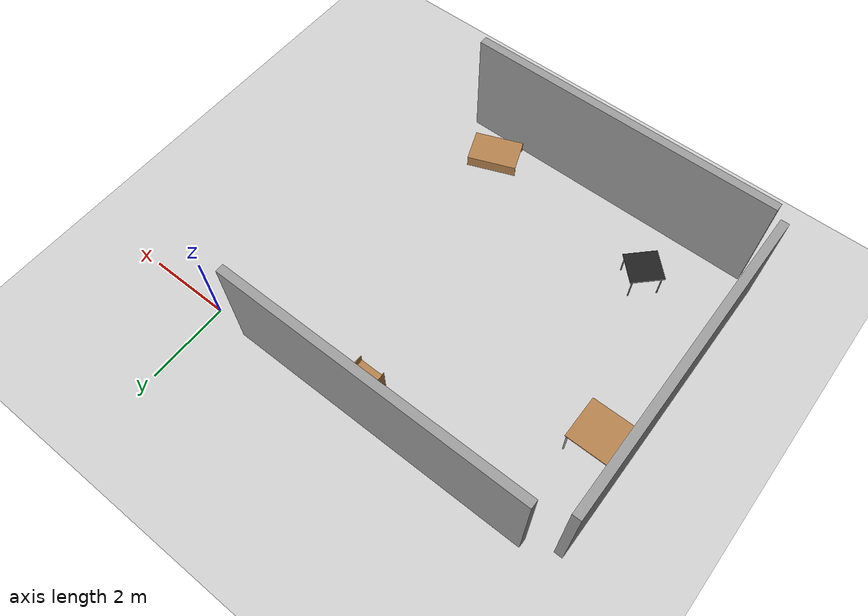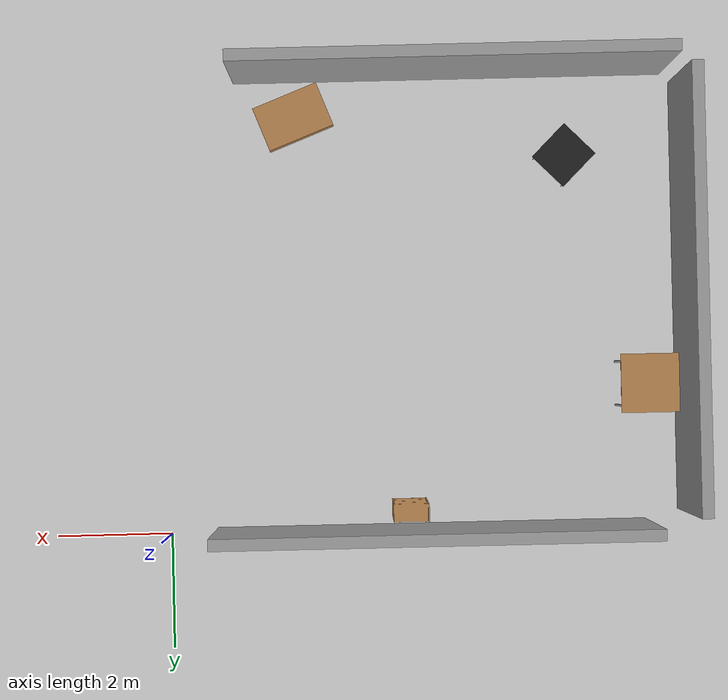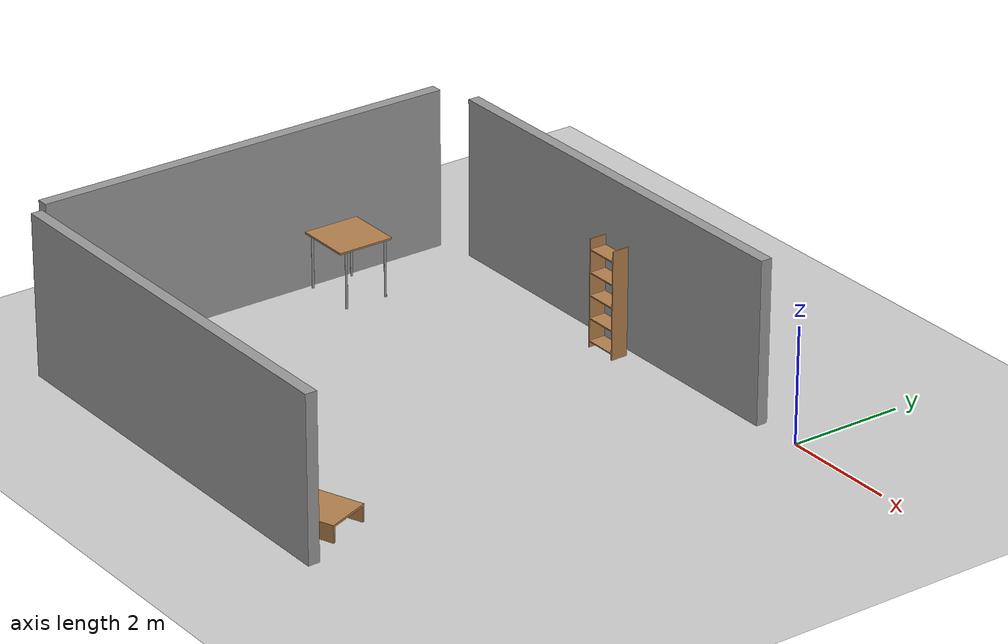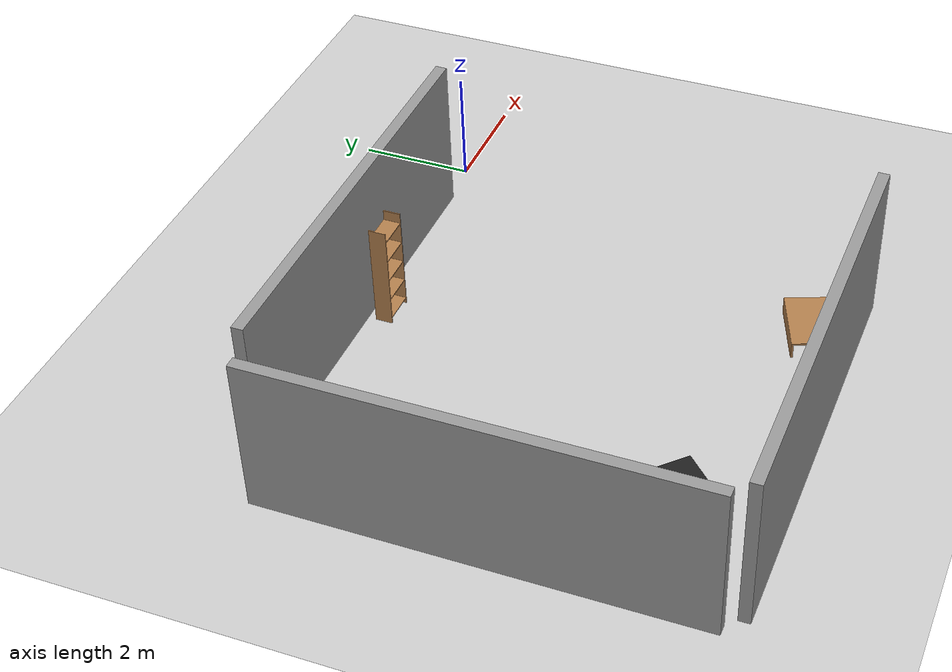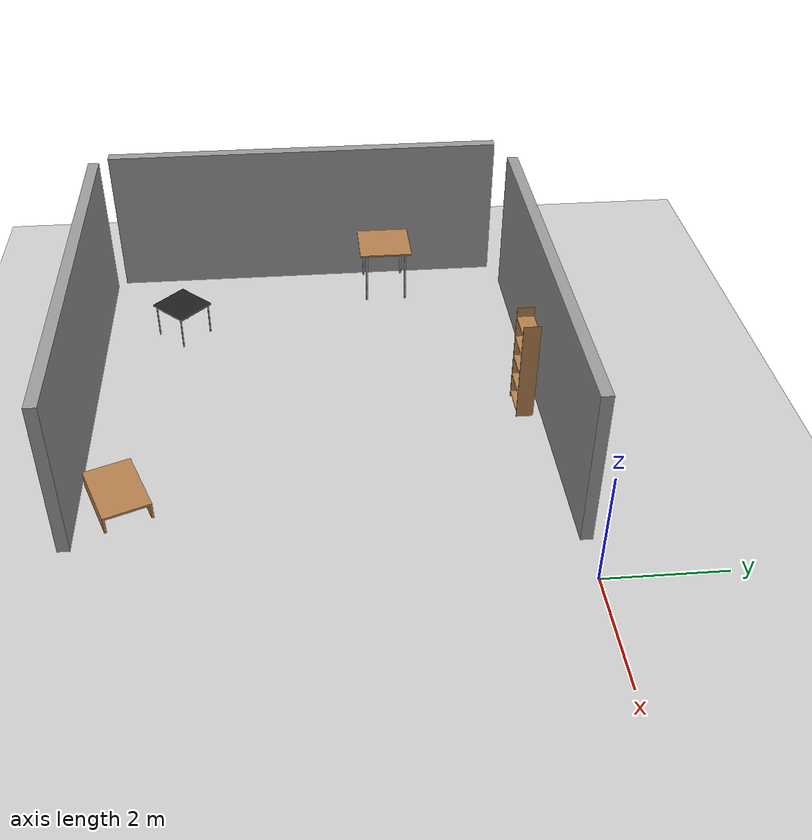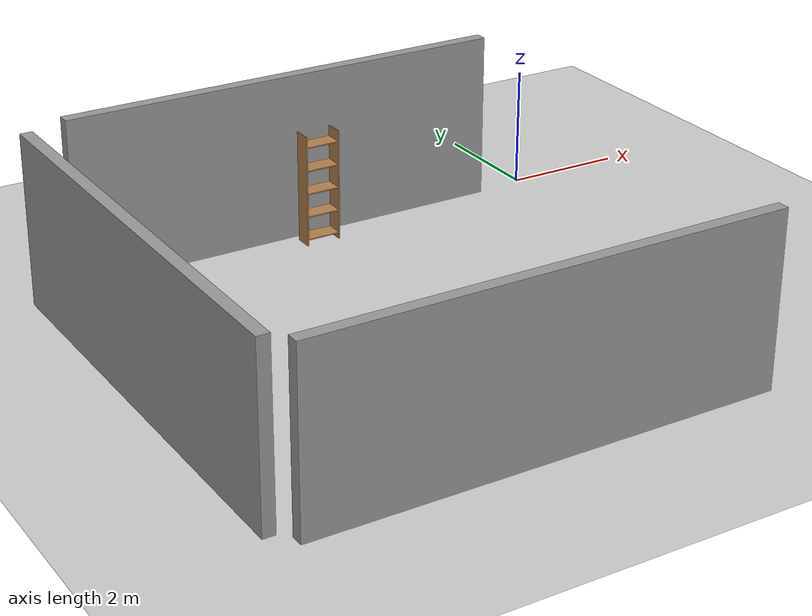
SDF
<sdf version="1.6">
 <world name="default">
  <light name="sun" type="directional">
   <pose>0 0 10 0 -0 0</pose>
   <diffuse>0.8 0.8 0.8 1</diffuse>
   <specular>0.1 0.1 0.1 1</specular>
   <attenuation>
    <range>1000</range>
    <constant>0.9</constant>
    <linear>0.01</linear>
    <quadratic>0.001</quadratic>
   </attenuation>
   <direction>-0.5 0.5 -1</direction>
  </light>
  <model name="ground_plane">
   <static>1</static>
   <link name="link">
    <collision name="collision">
     <geometry><plane><normal>0 0 1</normal><size>100 100</size></plane></geometry>
     <surface><friction><ode><mu>100</mu><mu2>50</mu2></ode></friction></surface>
    </collision>
    <visual name="visual">
     <cast_shadows>0</cast_shadows>
     <geometry><plane><normal>0 0 1</normal><size>100 100</size></plane></geometry>
     <material>
      <script><uri>file://media/materials/scripts/gazebo.material</uri><name>Gazebo/Grey</name></script>
     </material>
    </visual>
   </link>
  </model>
  <gravity>0 0 -9.8</gravity>
  <magnetic_field>6e-06 2.3e-05 -4.2e-05</magnetic_field>
  <atmosphere type="adiabatic"/>
  <physics name="default_physics" default="0" type="ode">
   <max_step_size>0.001</max_step_size>
   <real_time_factor>1</real_time_factor>
   <real_time_update_rate>1000</real_time_update_rate>
  </physics>
  <scene><ambient>0.4 0.4 0.4 1</ambient><background>0.7 0.7 0.7 1</background><shadows>1</shadows></scene>
  <spherical_coordinates>
   <surface_model>EARTH_WGS84</surface_model>
   <latitude_deg>0</latitude_deg>
   <longitude_deg>0</longitude_deg>
   <elevation>0</elevation>
   <heading_deg>0</heading_deg>
  </spherical_coordinates>
  <model name="grey_wall">
   <static>1</static>
   <link name="link">
    <pose>0 0 1.4 0 -0 0</pose>
    <collision name="collision"><geometry><box><size>7.5 0.2 2.8</size></box></geometry></collision>
    <visual name="visual">
     <cast_shadows>0</cast_shadows>
     <geometry><box><size>7.5 0.2 2.8</size></box></geometry>
     <material>
      <script>
       <uri>model://grey_wall/materials/scripts</uri>
       <uri>model://grey_wall/materials/textures</uri>
       <name>vrc/grey_wall</name>
      </script>
     </material>
    </visual>
   </link>
   <pose>-9 -4 0 0 0 -1.5708</pose>
  </model>
  <model name="grey_wall_clone">
   <static>1</static>
   <link name="link">
    <pose>0 0 1.4 0 -0 0</pose>
    <collision name="collision"><geometry><box><size>7.5 0.2 2.8</size></box></geometry></collision>
    <visual name="visual">
     <cast_shadows>0</cast_shadows>
     <geometry><box><size>7.5 0.2 2.8</size></box></geometry>
     <material>
      <script>
       <uri>model://grey_wall/materials/scripts</uri>
       <uri>model://grey_wall/materials/textures</uri>
       <name>vrc/grey_wall</name>
      </script>
     </material>
    </visual>
   </link>
   <pose>-5 -8 0 0 -0 3.14159</pose>
  </model>
  <model name="grey_wall_clone_0">
   <static>1</static>
   <link name="link">
    <pose>0 0 1.4 0 -0 0</pose>
    <collision name="collision"><geometry><box><size>7.5 0.2 2.8</size></box></geometry></collision>
    <visual name="visual">
     <cast_shadows>0</cast_shadows>
     <geometry><box><size>7.5 0.2 2.8</size></box></geometry>
     <material>
      <script>
       <uri>model://grey_wall/materials/scripts</uri>
       <uri>model://grey_wall/materials/textures</uri>
       <name>vrc/grey_wall</name>
      </script>
     </material>
    </visual>
   </link>
   <pose>-4.56941 0 0 0 -0 3.14159</pose>
  </model>
  <model name="kitchen_table">
   <static>1</static>
   <link name="link">
    <collision name="colision1">
     <geometry>
      <mesh><uri>model://kitchen_table/meshes/kitchen_table.stl</uri><scale>1 1 1</scale></mesh>
     </geometry>
    </collision>
    <visual name="visual1">
     <geometry>
      <mesh><uri>model://kitchen_table/meshes/kitchen_table.stl</uri><scale>1 1 1</scale></mesh>
     </geometry>
     <material>
      <script><uri>file://media/materials/scripts/gazebo.material</uri><name>Gazebo/FlatBlack</name></script>
     </material>
    </visual>
    <velocity_decay><linear>0</linear><angular>0</angular></velocity_decay>
   </link>
   <pose>-7 -7 0 0 -0 0.785398</pose>
  </model>
  <model name="table_1m">
   <static>1</static>
   <link name="link">
    <collision name="surface">
     <pose>0 0 1.01 0 -0 0</pose>
     <geometry><box><size>1 1.01 0.03</size></box></geometry>
    </collision>
    <visual name="visual1">
     <pose>0 0 1.01 0 -0 0</pose>
     <geometry><box><size>1 1.01 0.03</size></box></geometry>
     <material>
      <script><uri>file://media/materials/scripts/gazebo.material</uri><name>Gazebo/Wood</name></script>
     </material>
    </visual>
    <collision name="front_left_leg">
     <pose>0.48 0.38 0.5005 0 -0 0</pose>
     <geometry><cylinder><radius>0.02</radius><length>1.01</length></cylinder></geometry>
    </collision>
    <visual name="front_left_leg">
     <pose>0.48 0.38 0.5005 0 -0 0</pose>
     <geometry><cylinder><radius>0.02</radius><length>1.01</length></cylinder></geometry>
     <material>
      <script><uri>file://media/materials/scripts/gazebo.material</uri><name>Gazebo/Grey</name></script>
     </material>
    </visual>
    <collision name="front_right_leg">
     <pose>0.48 -0.38 0.5005 0 -0 0</pose>
     <geometry><cylinder><radius>0.02</radius><length>1.01</length></cylinder></geometry>
    </collision>
    <visual name="front_right_leg">
     <pose>0.48 -0.38 0.5005 0 -0 0</pose>
     <geometry><cylinder><radius>0.02</radius><length>1.01</length></cylinder></geometry>
     <material>
      <script><uri>file://media/materials/scripts/gazebo.material</uri><name>Gazebo/Grey</name></script>
     </material>
    </visual>
    <collision name="back_right_leg">
     <pose>-0.48 -0.38 0.5005 0 -0 0</pose>
     <geometry><cylinder><radius>0.02</radius><length>1.01</length></cylinder></geometry>
    </collision>
    <visual name="back_right_leg">
     <pose>-0.48 -0.38 0.5005 0 -0 0</pose>
     <geometry><cylinder><radius>0.02</radius><length>1.01</length></cylinder></geometry>
     <material>
      <script><uri>file://media/materials/scripts/gazebo.material</uri><name>Gazebo/Grey</name></script>
     </material>
    </visual>
    <collision name="back_left_leg">
     <pose>-0.48 0.38 0.5005 0 -0 0</pose>
     <geometry><cylinder><radius>0.02</radius><length>1.01</length></cylinder></geometry>
    </collision>
    <visual name="back_left_leg">
     <pose>-0.48 0.38 0.5005 0 -0 0</pose>
     <geometry><cylinder><radius>0.02</radius><length>1.01</length></cylinder></geometry>
     <material>
      <script><uri>file://media/materials/scripts/gazebo.material</uri><name>Gazebo/Grey</name></script>
     </material>
    </visual>
    <velocity_decay><linear>0</linear><angular>0</angular></velocity_decay>
   </link>
   <pose>-8.34174 -2.477 0 0 -0 0</pose>
  </model>
  <model name="reviews_table">
   <static>1</static>
   <link name="link">
    <collision name="colision1">
     <geometry>
      <mesh><uri>model://reviews_table/meshes/reviews_table.stl</uri><scale>1 1 1</scale></mesh>
     </geometry>
    </collision>
    <visual name="visual1">
     <geometry>
      <mesh><uri>model://reviews_table/meshes/reviews_table.stl</uri><scale>1 1 1</scale></mesh>
     </geometry>
     <material>
      <script><uri>file://media/materials/scripts/gazebo.material</uri><name>Gazebo/WoodFloor</name></script>
     </material>
    </visual>
    <velocity_decay><linear>0</linear><angular>0</angular></velocity_decay>
   </link>
   <pose>-2.99899 -7.11323 0 0 0 -1.19797</pose>
  </model>
  <model name="closet">
   <static>1</static>
   <link name="link">
    <collision name="colision1">
     <geometry><mesh><uri>model://closet/meshes/closet.stl</uri><scale>1 1 1</scale></mesh></geometry>
    </collision>
    <visual name="visual1">
     <geometry><mesh><uri>model://closet/meshes/closet.stl</uri><scale>1 1 1</scale></mesh></geometry>
     <material>
      <script><uri>file://media/materials/scripts/gazebo.material</uri><name>Gazebo/WoodFloor</name></script>
     </material>
    </visual>
    <velocity_decay><linear>0</linear><angular>0</angular></velocity_decay>
   </link>
   <pose>-4.48402 -0.541385 0 0 -0 0</pose>
  </model>
 </world>
</sdf>
